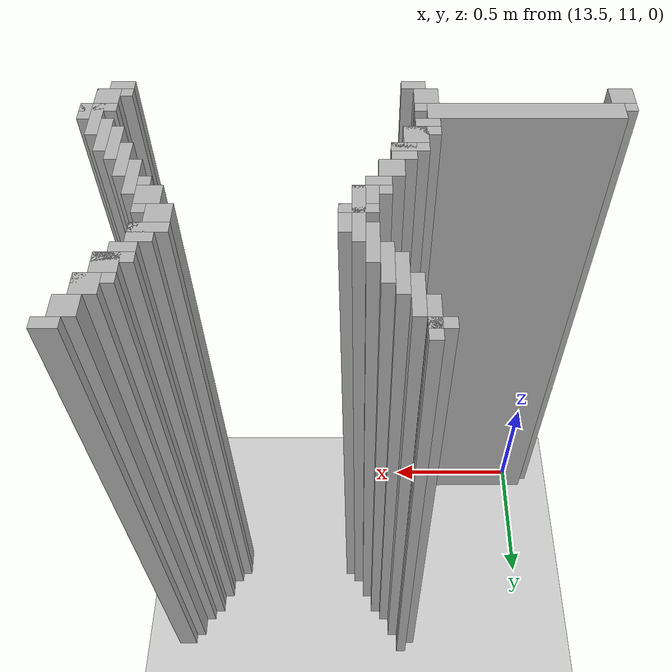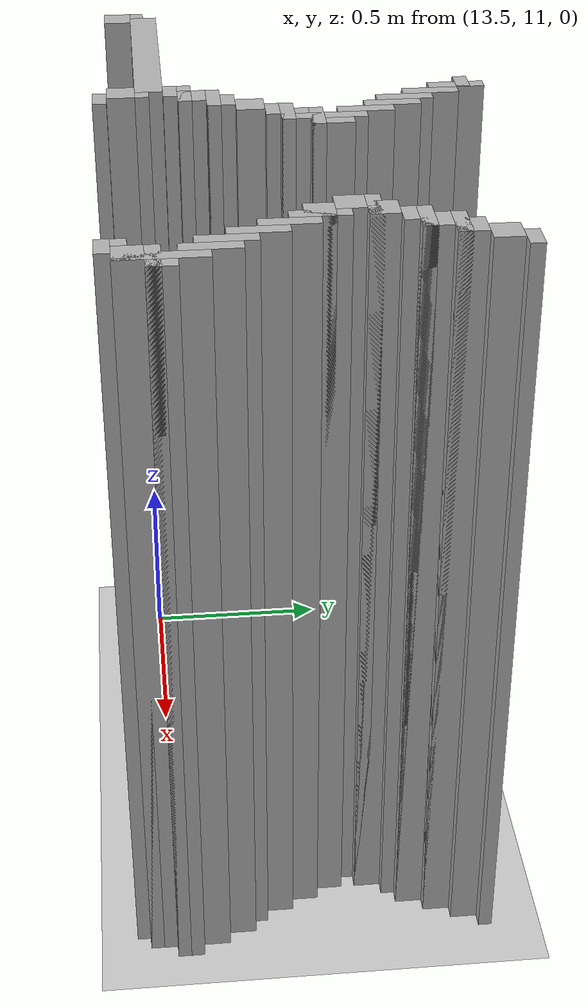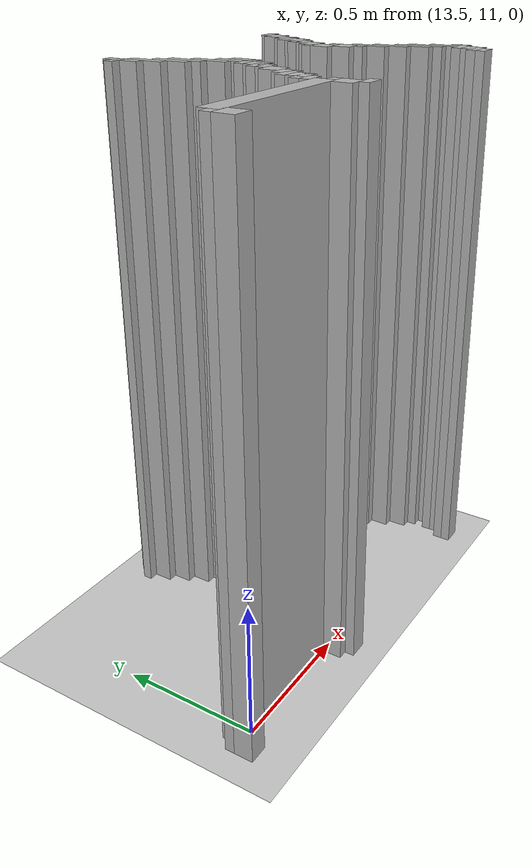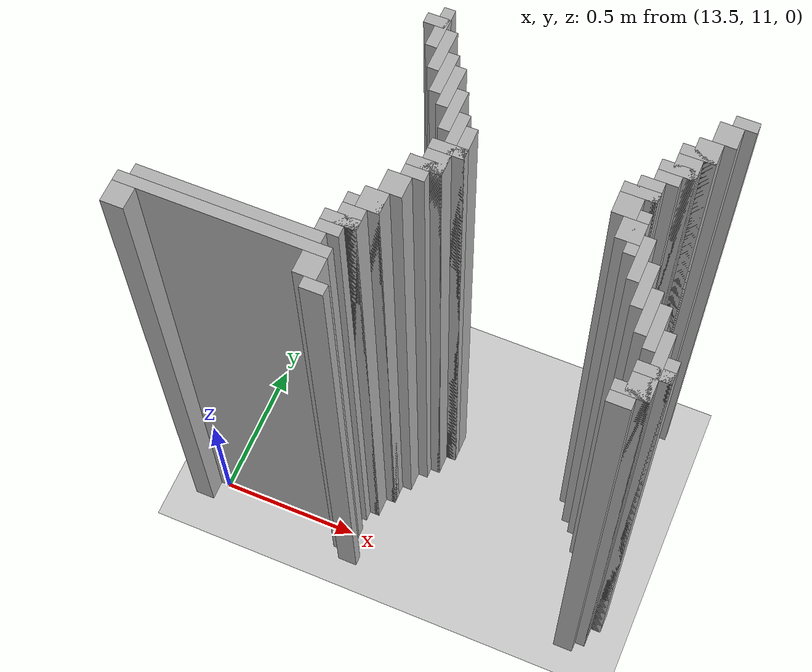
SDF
<sdf version="1.6">
 <world name="slam_world">
  <model name="ground_plane">
   <static>true</static>
   <link name="link">
    <collision name="collision">
     <geometry><plane><normal>0 0 1</normal><size>100 100</size></plane></geometry>
    </collision>
    <visual name="visual">
     <geometry><plane><normal>0 0 1</normal><size>100 100</size></plane></geometry>
     <material>
      <ambient>0.8 0.8 0.8 1</ambient>
      <diffuse>0.8 0.8 0.8 1</diffuse>
      <specular>0.8 0.8 0.8 1</specular>
     </material>
    </visual>
   </link>
  </model>
  <model name="wall_1819">
   <static>true</static>
   <pose>14.008120649651971 11.79814385150812 1.0 0 0 0</pose>
   <link name="link">
    <collision name="collision">
     <geometry><box><size>0.03480278422273782 0.13921113689095127 2.0</size></box></geometry>
    </collision>
    <visual name="visual">
     <geometry><box><size>0.03480278422273782 0.13921113689095127 2.0</size></box></geometry>
     <material><ambient>0.5 0.5 0.5 1</ambient><diffuse>0.7 0.7 0.7 1</diffuse></material>
    </visual>
   </link>
  </model>
  <model name="wall_1833">
   <static>true</static>
   <pose>13.990719257540603 11.81554524361949 1.0 0 0 0</pose>
   <link name="link">
    <collision name="collision">
     <geometry><box><size>0.06960556844547564 0.03480278422273782 2.0</size></box></geometry>
    </collision>
    <visual name="visual">
     <geometry><box><size>0.06960556844547564 0.03480278422273782 2.0</size></box></geometry>
     <material><ambient>0.5 0.5 0.5 1</ambient><diffuse>0.7 0.7 0.7 1</diffuse></material>
    </visual>
   </link>
  </model>
  <model name="wall_1834">
   <static>true</static>
   <pose>14.895591647331786 11.81554524361949 1.0 0 0 0</pose>
   <link name="link">
    <collision name="collision">
     <geometry><box><size>0.06960556844547564 0.03480278422273782 2.0</size></box></geometry>
    </collision>
    <visual name="visual">
     <geometry><box><size>0.06960556844547564 0.03480278422273782 2.0</size></box></geometry>
     <material><ambient>0.5 0.5 0.5 1</ambient><diffuse>0.7 0.7 0.7 1</diffuse></material>
    </visual>
   </link>
  </model>
  <model name="wall_1847">
   <static>true</static>
   <pose>14.042923433874709 11.728538283062644 1.0 0 0 0</pose>
   <link name="link">
    <collision name="collision">
     <geometry><box><size>0.03480278422273782 0.13921113689095127 2.0</size></box></geometry>
    </collision>
    <visual name="visual">
     <geometry><box><size>0.03480278422273782 0.13921113689095127 2.0</size></box></geometry>
     <material><ambient>0.5 0.5 0.5 1</ambient><diffuse>0.7 0.7 0.7 1</diffuse></material>
    </visual>
   </link>
  </model>
  <model name="wall_1848">
   <static>true</static>
   <pose>14.860788863109049 11.763341067285383 1.0 0 0 0</pose>
   <link name="link">
    <collision name="collision">
     <geometry><box><size>0.06960556844547564 0.06960556844547564 2.0</size></box></geometry>
    </collision>
    <visual name="visual">
     <geometry><box><size>0.06960556844547564 0.06960556844547564 2.0</size></box></geometry>
     <material><ambient>0.5 0.5 0.5 1</ambient><diffuse>0.7 0.7 0.7 1</diffuse></material>
    </visual>
   </link>
  </model>
  <model name="wall_1861">
   <static>true</static>
   <pose>14.077726218097448 11.658932714617169 1.0 0 0 0</pose>
   <link name="link">
    <collision name="collision">
     <geometry><box><size>0.03480278422273782 0.13921113689095127 2.0</size></box></geometry>
    </collision>
    <visual name="visual">
     <geometry><box><size>0.03480278422273782 0.13921113689095127 2.0</size></box></geometry>
     <material><ambient>0.5 0.5 0.5 1</ambient><diffuse>0.7 0.7 0.7 1</diffuse></material>
    </visual>
   </link>
  </model>
  <model name="wall_1862">
   <static>true</static>
   <pose>14.825986078886311 11.693735498839906 1.0 0 0 0</pose>
   <link name="link">
    <collision name="collision">
     <geometry><box><size>0.06960556844547564 0.06960556844547564 2.0</size></box></geometry>
    </collision>
    <visual name="visual">
     <geometry><box><size>0.06960556844547564 0.06960556844547564 2.0</size></box></geometry>
     <material><ambient>0.5 0.5 0.5 1</ambient><diffuse>0.7 0.7 0.7 1</diffuse></material>
    </visual>
   </link>
  </model>
  <model name="wall_1875">
   <static>true</static>
   <pose>14.112529002320185 11.624129930394432 1.0 0 0 0</pose>
   <link name="link">
    <collision name="collision">
     <geometry><box><size>0.03480278422273782 0.13921113689095127 2.0</size></box></geometry>
    </collision>
    <visual name="visual">
     <geometry><box><size>0.03480278422273782 0.13921113689095127 2.0</size></box></geometry>
     <material><ambient>0.5 0.5 0.5 1</ambient><diffuse>0.7 0.7 0.7 1</diffuse></material>
    </visual>
   </link>
  </model>
  <model name="wall_1876">
   <static>true</static>
   <pose>14.80858468677494 11.676334106728538 1.0 0 0 0</pose>
   <link name="link">
    <collision name="collision">
     <geometry><box><size>0.10440835266821345 0.03480278422273782 2.0</size></box></geometry>
    </collision>
    <visual name="visual">
     <geometry><box><size>0.10440835266821345 0.03480278422273782 2.0</size></box></geometry>
     <material><ambient>0.5 0.5 0.5 1</ambient><diffuse>0.7 0.7 0.7 1</diffuse></material>
    </visual>
   </link>
  </model>
  <model name="wall_1885">
   <static>true</static>
   <pose>14.791183294663572 11.624129930394432 1.0 0 0 0</pose>
   <link name="link">
    <collision name="collision">
     <geometry><box><size>0.06960556844547564 0.06960556844547564 2.0</size></box></geometry>
    </collision>
    <visual name="visual">
     <geometry><box><size>0.06960556844547564 0.06960556844547564 2.0</size></box></geometry>
     <material><ambient>0.5 0.5 0.5 1</ambient><diffuse>0.7 0.7 0.7 1</diffuse></material>
    </visual>
   </link>
  </model>
  <model name="wall_1898">
   <static>true</static>
   <pose>14.147331786542923 11.554524361948955 1.0 0 0 0</pose>
   <link name="link">
    <collision name="collision">
     <geometry><box><size>0.03480278422273782 0.13921113689095127 2.0</size></box></geometry>
    </collision>
    <visual name="visual">
     <geometry><box><size>0.03480278422273782 0.13921113689095127 2.0</size></box></geometry>
     <material><ambient>0.5 0.5 0.5 1</ambient><diffuse>0.7 0.7 0.7 1</diffuse></material>
    </visual>
   </link>
  </model>
  <model name="wall_1899">
   <static>true</static>
   <pose>14.773781902552203 11.606728538283063 1.0 0 0 0</pose>
   <link name="link">
    <collision name="collision">
     <geometry><box><size>0.10440835266821345 0.03480278422273782 2.0</size></box></geometry>
    </collision>
    <visual name="visual">
     <geometry><box><size>0.10440835266821345 0.03480278422273782 2.0</size></box></geometry>
     <material><ambient>0.5 0.5 0.5 1</ambient><diffuse>0.7 0.7 0.7 1</diffuse></material>
    </visual>
   </link>
  </model>
  <model name="wall_1905">
   <static>true</static>
   <pose>14.756380510440835 11.571925754060324 1.0 0 0 0</pose>
   <link name="link">
    <collision name="collision">
     <geometry><box><size>0.06960556844547564 0.03480278422273782 2.0</size></box></geometry>
    </collision>
    <visual name="visual">
     <geometry><box><size>0.06960556844547564 0.03480278422273782 2.0</size></box></geometry>
     <material><ambient>0.5 0.5 0.5 1</ambient><diffuse>0.7 0.7 0.7 1</diffuse></material>
    </visual>
   </link>
  </model>
  <model name="wall_1918">
   <static>true</static>
   <pose>14.18213457076566 11.450116009280743 1.0 0 0 0</pose>
   <link name="link">
    <collision name="collision">
     <geometry><box><size>0.03480278422273782 0.2088167053364269 2.0</size></box></geometry>
    </collision>
    <visual name="visual">
     <geometry><box><size>0.03480278422273782 0.2088167053364269 2.0</size></box></geometry>
     <material><ambient>0.5 0.5 0.5 1</ambient><diffuse>0.7 0.7 0.7 1</diffuse></material>
    </visual>
   </link>
  </model>
  <model name="wall_1919">
   <static>true</static>
   <pose>14.721577726218097 11.519721577726218 1.0 0 0 0</pose>
   <link name="link">
    <collision name="collision">
     <geometry><box><size>0.06960556844547564 0.06960556844547564 2.0</size></box></geometry>
    </collision>
    <visual name="visual">
     <geometry><box><size>0.06960556844547564 0.06960556844547564 2.0</size></box></geometry>
     <material><ambient>0.5 0.5 0.5 1</ambient><diffuse>0.7 0.7 0.7 1</diffuse></material>
    </visual>
   </link>
  </model>
  <model name="wall_1931">
   <static>true</static>
   <pose>14.2169373549884 11.467517401392112 1.0 0 0 0</pose>
   <link name="link">
    <collision name="collision">
     <geometry><box><size>0.03480278422273782 0.10440835266821345 2.0</size></box></geometry>
    </collision>
    <visual name="visual">
     <geometry><box><size>0.03480278422273782 0.10440835266821345 2.0</size></box></geometry>
     <material><ambient>0.5 0.5 0.5 1</ambient><diffuse>0.7 0.7 0.7 1</diffuse></material>
    </visual>
   </link>
  </model>
  <model name="wall_1932">
   <static>true</static>
   <pose>14.704176334106728 11.502320185614849 1.0 0 0 0</pose>
   <link name="link">
    <collision name="collision">
     <geometry><box><size>0.10440835266821345 0.03480278422273782 2.0</size></box></geometry>
    </collision>
    <visual name="visual">
     <geometry><box><size>0.10440835266821345 0.03480278422273782 2.0</size></box></geometry>
     <material><ambient>0.5 0.5 0.5 1</ambient><diffuse>0.7 0.7 0.7 1</diffuse></material>
    </visual>
   </link>
  </model>
  <model name="wall_1943">
   <static>true</static>
   <pose>14.68677494199536 11.450116009280743 1.0 0 0 0</pose>
   <link name="link">
    <collision name="collision">
     <geometry><box><size>0.06960556844547564 0.06960556844547564 2.0</size></box></geometry>
    </collision>
    <visual name="visual">
     <geometry><box><size>0.06960556844547564 0.06960556844547564 2.0</size></box></geometry>
     <material><ambient>0.5 0.5 0.5 1</ambient><diffuse>0.7 0.7 0.7 1</diffuse></material>
    </visual>
   </link>
  </model>
  <model name="wall_1956">
   <static>true</static>
   <pose>14.18213457076566 11.432714617169372 1.0 0 0 0</pose>
   <link name="link">
    <collision name="collision">
     <geometry><box><size>0.10440835266821345 0.03480278422273782 2.0</size></box></geometry>
    </collision>
    <visual name="visual">
     <geometry><box><size>0.10440835266821345 0.03480278422273782 2.0</size></box></geometry>
     <material><ambient>0.5 0.5 0.5 1</ambient><diffuse>0.7 0.7 0.7 1</diffuse></material>
    </visual>
   </link>
  </model>
  <model name="wall_1957">
   <static>true</static>
   <pose>14.738979118329466 11.380510440835266 1.0 0 0 0</pose>
   <link name="link">
    <collision name="collision">
     <geometry><box><size>0.03480278422273782 0.13921113689095127 2.0</size></box></geometry>
    </collision>
    <visual name="visual">
     <geometry><box><size>0.03480278422273782 0.13921113689095127 2.0</size></box></geometry>
     <material><ambient>0.5 0.5 0.5 1</ambient><diffuse>0.7 0.7 0.7 1</diffuse></material>
    </visual>
   </link>
  </model>
  <model name="wall_1973">
   <static>true</static>
   <pose>14.164733178654291 11.380510440835266 1.0 0 0 0</pose>
   <link name="link">
    <collision name="collision">
     <geometry><box><size>0.06960556844547564 0.06960556844547564 2.0</size></box></geometry>
    </collision>
    <visual name="visual">
     <geometry><box><size>0.06960556844547564 0.06960556844547564 2.0</size></box></geometry>
     <material><ambient>0.5 0.5 0.5 1</ambient><diffuse>0.7 0.7 0.7 1</diffuse></material>
    </visual>
   </link>
  </model>
  <model name="wall_1974">
   <static>true</static>
   <pose>14.721577726218097 11.380510440835266 1.0 0 0 0</pose>
   <link name="link">
    <collision name="collision">
     <geometry><box><size>0.06960556844547564 0.06960556844547564 2.0</size></box></geometry>
    </collision>
    <visual name="visual">
     <geometry><box><size>0.06960556844547564 0.06960556844547564 2.0</size></box></geometry>
     <material><ambient>0.5 0.5 0.5 1</ambient><diffuse>0.7 0.7 0.7 1</diffuse></material>
    </visual>
   </link>
  </model>
  <model name="wall_1990">
   <static>true</static>
   <pose>14.147331786542923 11.363109048723897 1.0 0 0 0</pose>
   <link name="link">
    <collision name="collision">
     <geometry><box><size>0.10440835266821345 0.03480278422273782 2.0</size></box></geometry>
    </collision>
    <visual name="visual">
     <geometry><box><size>0.10440835266821345 0.03480278422273782 2.0</size></box></geometry>
     <material><ambient>0.5 0.5 0.5 1</ambient><diffuse>0.7 0.7 0.7 1</diffuse></material>
    </visual>
   </link>
  </model>
  <model name="wall_1991">
   <static>true</static>
   <pose>14.773781902552203 11.310904872389791 1.0 0 0 0</pose>
   <link name="link">
    <collision name="collision">
     <geometry><box><size>0.03480278422273782 0.13921113689095127 2.0</size></box></geometry>
    </collision>
    <visual name="visual">
     <geometry><box><size>0.03480278422273782 0.13921113689095127 2.0</size></box></geometry>
     <material><ambient>0.5 0.5 0.5 1</ambient><diffuse>0.7 0.7 0.7 1</diffuse></material>
    </visual>
   </link>
  </model>
  <model name="wall_2003">
   <static>true</static>
   <pose>14.129930394431554 11.32830626450116 1.0 0 0 0</pose>
   <link name="link">
    <collision name="collision">
     <geometry><box><size>0.06960556844547564 0.03480278422273782 2.0</size></box></geometry>
    </collision>
    <visual name="visual">
     <geometry><box><size>0.06960556844547564 0.03480278422273782 2.0</size></box></geometry>
     <material><ambient>0.5 0.5 0.5 1</ambient><diffuse>0.7 0.7 0.7 1</diffuse></material>
    </visual>
   </link>
  </model>
  <model name="wall_2019">
   <static>true</static>
   <pose>14.095127610208817 11.276102088167052 1.0 0 0 0</pose>
   <link name="link">
    <collision name="collision">
     <geometry><box><size>0.06960556844547564 0.06960556844547564 2.0</size></box></geometry>
    </collision>
    <visual name="visual">
     <geometry><box><size>0.06960556844547564 0.06960556844547564 2.0</size></box></geometry>
     <material><ambient>0.5 0.5 0.5 1</ambient><diffuse>0.7 0.7 0.7 1</diffuse></material>
    </visual>
   </link>
  </model>
  <model name="wall_2020">
   <static>true</static>
   <pose>14.80858468677494 11.241299303944315 1.0 0 0 0</pose>
   <link name="link">
    <collision name="collision">
     <geometry><box><size>0.03480278422273782 0.13921113689095127 2.0</size></box></geometry>
    </collision>
    <visual name="visual">
     <geometry><box><size>0.03480278422273782 0.13921113689095127 2.0</size></box></geometry>
     <material><ambient>0.5 0.5 0.5 1</ambient><diffuse>0.7 0.7 0.7 1</diffuse></material>
    </visual>
   </link>
  </model>
  <model name="wall_2036">
   <static>true</static>
   <pose>14.06032482598608 11.206496519721577 1.0 0 0 0</pose>
   <link name="link">
    <collision name="collision">
     <geometry><box><size>0.06960556844547564 0.06960556844547564 2.0</size></box></geometry>
    </collision>
    <visual name="visual">
     <geometry><box><size>0.06960556844547564 0.06960556844547564 2.0</size></box></geometry>
     <material><ambient>0.5 0.5 0.5 1</ambient><diffuse>0.7 0.7 0.7 1</diffuse></material>
    </visual>
   </link>
  </model>
  <model name="wall_2037">
   <static>true</static>
   <pose>14.84338747099768 11.17169373549884 1.0 0 0 0</pose>
   <link name="link">
    <collision name="collision">
     <geometry><box><size>0.03480278422273782 0.13921113689095127 2.0</size></box></geometry>
    </collision>
    <visual name="visual">
     <geometry><box><size>0.03480278422273782 0.13921113689095127 2.0</size></box></geometry>
     <material><ambient>0.5 0.5 0.5 1</ambient><diffuse>0.7 0.7 0.7 1</diffuse></material>
    </visual>
   </link>
  </model>
  <model name="wall_2053">
   <static>true</static>
   <pose>14.042923433874709 11.189095127610209 1.0 0 0 0</pose>
   <link name="link">
    <collision name="collision">
     <geometry><box><size>0.10440835266821345 0.03480278422273782 2.0</size></box></geometry>
    </collision>
    <visual name="visual">
     <geometry><box><size>0.10440835266821345 0.03480278422273782 2.0</size></box></geometry>
     <material><ambient>0.5 0.5 0.5 1</ambient><diffuse>0.7 0.7 0.7 1</diffuse></material>
    </visual>
   </link>
  </model>
  <model name="wall_2054">
   <static>true</static>
   <pose>14.878190255220417 11.1368909512761 1.0 0 0 0</pose>
   <link name="link">
    <collision name="collision">
     <geometry><box><size>0.03480278422273782 0.13921113689095127 2.0</size></box></geometry>
    </collision>
    <visual name="visual">
     <geometry><box><size>0.03480278422273782 0.13921113689095127 2.0</size></box></geometry>
     <material><ambient>0.5 0.5 0.5 1</ambient><diffuse>0.7 0.7 0.7 1</diffuse></material>
    </visual>
   </link>
  </model>
  <model name="wall_2063">
   <static>true</static>
   <pose>14.02552204176334 11.1368909512761 1.0 0 0 0</pose>
   <link name="link">
    <collision name="collision">
     <geometry><box><size>0.06960556844547564 0.06960556844547564 2.0</size></box></geometry>
    </collision>
    <visual name="visual">
     <geometry><box><size>0.06960556844547564 0.06960556844547564 2.0</size></box></geometry>
     <material><ambient>0.5 0.5 0.5 1</ambient><diffuse>0.7 0.7 0.7 1</diffuse></material>
    </visual>
   </link>
  </model>
  <model name="wall_2079">
   <static>true</static>
   <pose>14.008120649651971 11.119489559164732 1.0 0 0 0</pose>
   <link name="link">
    <collision name="collision">
     <geometry><box><size>0.10440835266821345 0.03480278422273782 2.0</size></box></geometry>
    </collision>
    <visual name="visual">
     <geometry><box><size>0.10440835266821345 0.03480278422273782 2.0</size></box></geometry>
     <material><ambient>0.5 0.5 0.5 1</ambient><diffuse>0.7 0.7 0.7 1</diffuse></material>
    </visual>
   </link>
  </model>
  <model name="wall_2080">
   <static>true</static>
   <pose>14.912993039443155 11.032482598607888 1.0 0 0 0</pose>
   <link name="link">
    <collision name="collision">
     <geometry><box><size>0.03480278422273782 0.2088167053364269 2.0</size></box></geometry>
    </collision>
    <visual name="visual">
     <geometry><box><size>0.03480278422273782 0.2088167053364269 2.0</size></box></geometry>
     <material><ambient>0.5 0.5 0.5 1</ambient><diffuse>0.7 0.7 0.7 1</diffuse></material>
    </visual>
   </link>
  </model>
  <model name="wall_2089">
   <static>true</static>
   <pose>13.990719257540603 11.084686774941995 1.0 0 0 0</pose>
   <link name="link">
    <collision name="collision">
     <geometry><box><size>0.06960556844547564 0.03480278422273782 2.0</size></box></geometry>
    </collision>
    <visual name="visual">
     <geometry><box><size>0.06960556844547564 0.03480278422273782 2.0</size></box></geometry>
     <material><ambient>0.5 0.5 0.5 1</ambient><diffuse>0.7 0.7 0.7 1</diffuse></material>
    </visual>
   </link>
  </model>
  <model name="wall_2102">
   <static>true</static>
   <pose>13.7122969837587 11.032482598607888 1.0 0 0 0</pose>
   <link name="link">
    <collision name="collision">
     <geometry><box><size>0.5568445475638051 0.06960556844547564 2.0</size></box></geometry>
    </collision>
    <visual name="visual">
     <geometry><box><size>0.5568445475638051 0.06960556844547564 2.0</size></box></geometry>
     <material><ambient>0.5 0.5 0.5 1</ambient><diffuse>0.7 0.7 0.7 1</diffuse></material>
    </visual>
   </link>
  </model>
  <model name="wall_2103">
   <static>true</static>
   <pose>14.947795823665892 11.032482598607888 1.0 0 0 0</pose>
   <link name="link">
    <collision name="collision">
     <geometry><box><size>0.03480278422273782 0.06960556844547564 2.0</size></box></geometry>
    </collision>
    <visual name="visual">
     <geometry><box><size>0.03480278422273782 0.06960556844547564 2.0</size></box></geometry>
     <material><ambient>0.5 0.5 0.5 1</ambient><diffuse>0.7 0.7 0.7 1</diffuse></material>
    </visual>
   </link>
  </model>
  <model name="wall_2112">
   <static>true</static>
   <pose>13.7122969837587 11.01508120649652 1.0 0 0 0</pose>
   <link name="link">
    <collision name="collision">
     <geometry><box><size>0.6264501160092807 0.03480278422273782 2.0</size></box></geometry>
    </collision>
    <visual name="visual">
     <geometry><box><size>0.6264501160092807 0.03480278422273782 2.0</size></box></geometry>
     <material><ambient>0.5 0.5 0.5 1</ambient><diffuse>0.7 0.7 0.7 1</diffuse></material>
    </visual>
   </link>
  </model>
  <model name="wall_2113">
   <static>true</static>
   <pose>14.912993039443155 11.01508120649652 1.0 0 0 0</pose>
   <link name="link">
    <collision name="collision">
     <geometry><box><size>0.10440835266821345 0.03480278422273782 2.0</size></box></geometry>
    </collision>
    <visual name="visual">
     <geometry><box><size>0.10440835266821345 0.03480278422273782 2.0</size></box></geometry>
     <material><ambient>0.5 0.5 0.5 1</ambient><diffuse>0.7 0.7 0.7 1</diffuse></material>
    </visual>
   </link>
  </model>
  <model name="wall_2124">
   <static>true</static>
   <pose>13.433874709976797 10.962877030162412 1.0 0 0 0</pose>
   <link name="link">
    <collision name="collision">
     <geometry><box><size>0.06960556844547564 0.06960556844547564 2.0</size></box></geometry>
    </collision>
    <visual name="visual">
     <geometry><box><size>0.06960556844547564 0.06960556844547564 2.0</size></box></geometry>
     <material><ambient>0.5 0.5 0.5 1</ambient><diffuse>0.7 0.7 0.7 1</diffuse></material>
    </visual>
   </link>
  </model>
  <model name="wall_2125">
   <static>true</static>
   <pose>13.990719257540603 10.962877030162412 1.0 0 0 0</pose>
   <link name="link">
    <collision name="collision">
     <geometry><box><size>0.06960556844547564 0.06960556844547564 2.0</size></box></geometry>
    </collision>
    <visual name="visual">
     <geometry><box><size>0.06960556844547564 0.06960556844547564 2.0</size></box></geometry>
     <material><ambient>0.5 0.5 0.5 1</ambient><diffuse>0.7 0.7 0.7 1</diffuse></material>
    </visual>
   </link>
  </model>
  <model name="wall_2126">
   <static>true</static>
   <pose>14.895591647331786 10.962877030162412 1.0 0 0 0</pose>
   <link name="link">
    <collision name="collision">
     <geometry><box><size>0.06960556844547564 0.06960556844547564 2.0</size></box></geometry>
    </collision>
    <visual name="visual">
     <geometry><box><size>0.06960556844547564 0.06960556844547564 2.0</size></box></geometry>
     <material><ambient>0.5 0.5 0.5 1</ambient><diffuse>0.7 0.7 0.7 1</diffuse></material>
    </visual>
   </link>
  </model>
  <model name="wall_2139">
   <static>true</static>
   <pose>14.878190255220417 10.945475638051043 1.0 0 0 0</pose>
   <link name="link">
    <collision name="collision">
     <geometry><box><size>0.10440835266821345 0.03480278422273782 2.0</size></box></geometry>
    </collision>
    <visual name="visual">
     <geometry><box><size>0.10440835266821345 0.03480278422273782 2.0</size></box></geometry>
     <material><ambient>0.5 0.5 0.5 1</ambient><diffuse>0.7 0.7 0.7 1</diffuse></material>
    </visual>
   </link>
  </model>
  <model name="wall_2148">
   <static>true</static>
   <pose>14.02552204176334 10.910672853828306 1.0 0 0 0</pose>
   <link name="link">
    <collision name="collision">
     <geometry><box><size>0.06960556844547564 0.03480278422273782 2.0</size></box></geometry>
    </collision>
    <visual name="visual">
     <geometry><box><size>0.06960556844547564 0.03480278422273782 2.0</size></box></geometry>
     <material><ambient>0.5 0.5 0.5 1</ambient><diffuse>0.7 0.7 0.7 1</diffuse></material>
    </visual>
   </link>
  </model>
  <model name="wall_2149">
   <static>true</static>
   <pose>14.860788863109049 10.910672853828306 1.0 0 0 0</pose>
   <link name="link">
    <collision name="collision">
     <geometry><box><size>0.06960556844547564 0.03480278422273782 2.0</size></box></geometry>
    </collision>
    <visual name="visual">
     <geometry><box><size>0.06960556844547564 0.03480278422273782 2.0</size></box></geometry>
     <material><ambient>0.5 0.5 0.5 1</ambient><diffuse>0.7 0.7 0.7 1</diffuse></material>
    </visual>
   </link>
  </model>
 </world>
</sdf>
